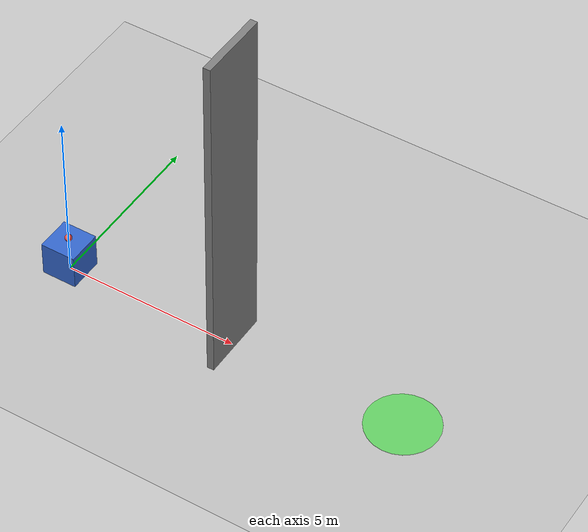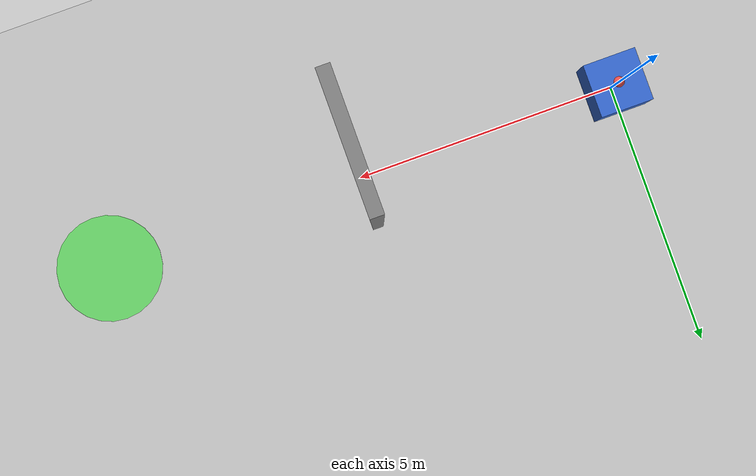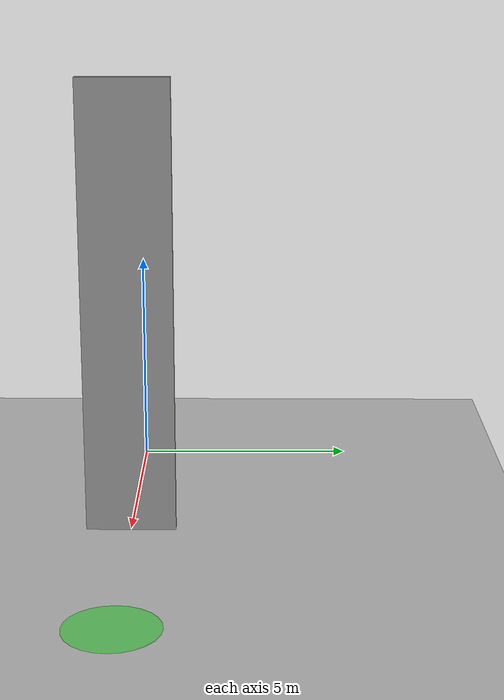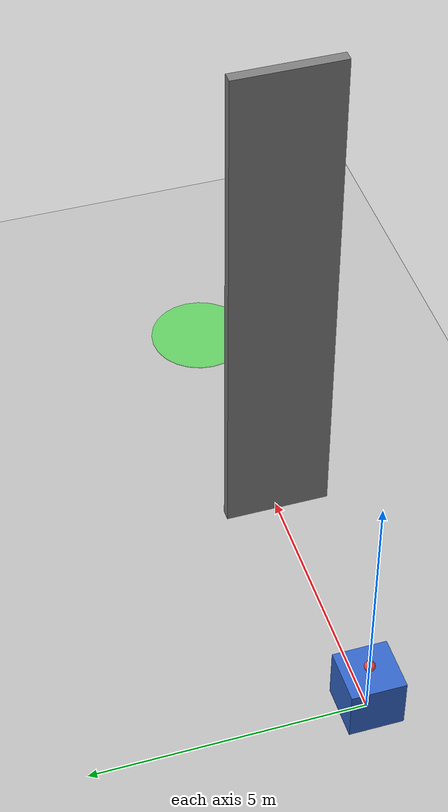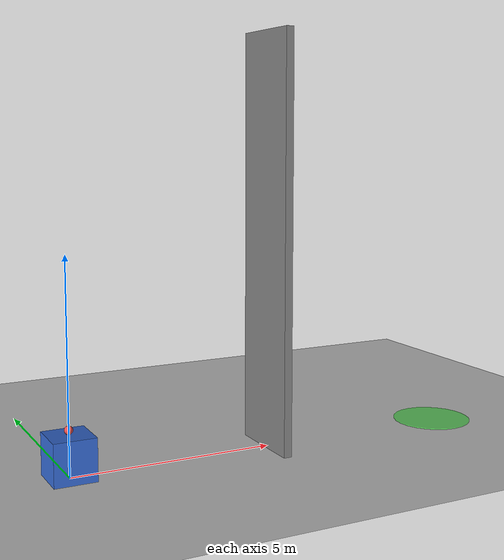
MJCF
<mujoco model="aerodynamic_env">
  <option gravity="0 0 -9.81" timestep="0.005" integrator="Euler"/>

  <asset>
    <material name="floor_mat"  rgba="0.75 0.75 0.75 1"/>
    <material name="agent_mat"  rgba="0.2  0.4  0.8  1"/>
    <material name="ball_mat"   rgba="0.9  0.3  0.3  1"/>
    <material name="target_mat" rgba="0.2  0.9  0.2  0.6"/>
    <material name="wall_mat"   rgba="0.5  0.5  0.5  1"/>
  </asset>

  <worldbody>
    <!-- Static floor plane -->
    <geom name="floor" type="plane" size="50 50 0.1" material="floor_mat" condim="3"/>

    <!-- Agent: static 1x1x1 cube sitting on floor at origin (throw point) -->
    <body name="agent" pos="0 0 0.5">
      <geom name="agent_geom" type="box" size="0.5 0.5 0.5" material="agent_mat"/>
    </body>

    <!-- Projectile: sphere with freejoint, starts just above agent -->
    <body name="ball" pos="0 0 1.1">
      <freejoint name="ball_free"/>
      <geom name="ball_geom" type="sphere" size="0.1" mass="0.145"
            material="ball_mat" condim="3"/>
    </body>

    <!-- Target disc: mocap body, repositioned via data.mocap_pos each reset -->
    <body name="target" mocap="true" pos="10 0 0.01">
      <geom name="target_geom" type="cylinder" size="1.0 0.01" material="target_mat"/>
    </body>

    <!-- Wall obstacle: mocap body, position and width set each reset -->
    <body name="wall" mocap="true" pos="5 0 5.0">
      <geom name="wall_geom" type="box" size="0.1 1.0 5.0" material="wall_mat"/>
    </body>

  </worldbody>

  <actuator>
    <general name="pitch"  joint="ball_free" gear="0 0 0 0 0 0" forcerange="0 0" ctrlrange="-1 1"/>
    <general name="yaw"    joint="ball_free" gear="0 0 0 0 0 0" forcerange="0 0" ctrlrange="-1 1"/>
    <general name="thrust" joint="ball_free" gear="0 0 0 0 0 0" forcerange="0 0" ctrlrange="-1 1"/>
    <general name="spin"   joint="ball_free" gear="0 0 0 0 0 0" forcerange="0 0" ctrlrange="-1 1"/>
  </actuator>

</mujoco>
